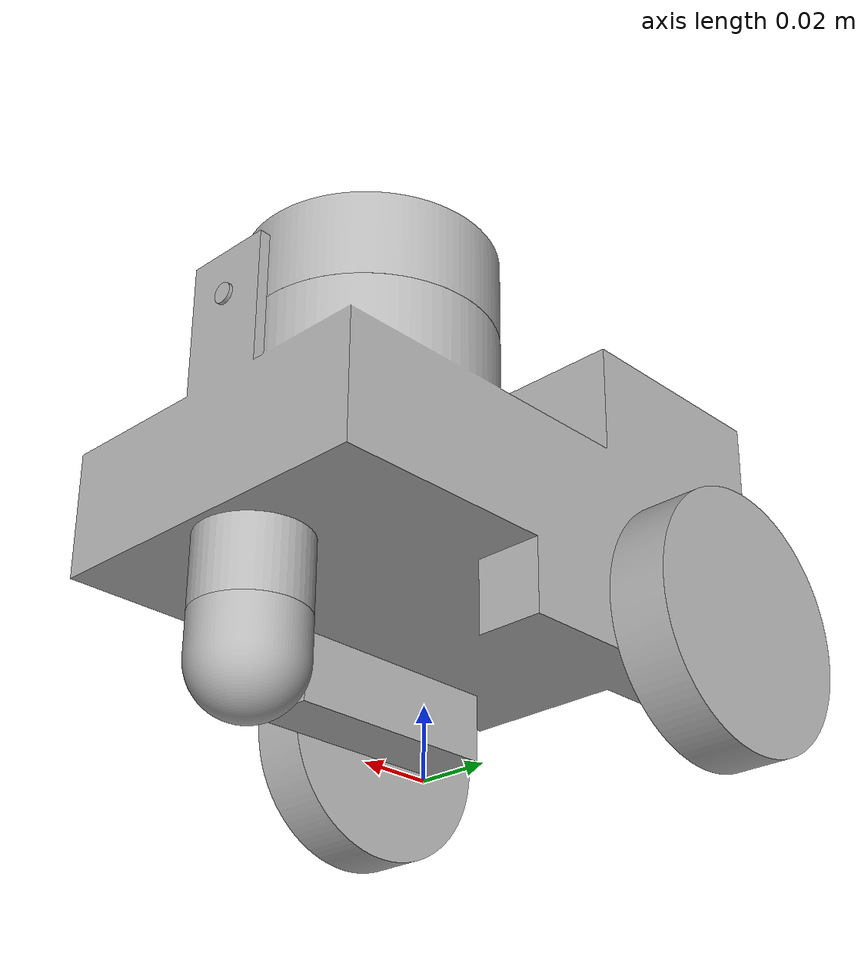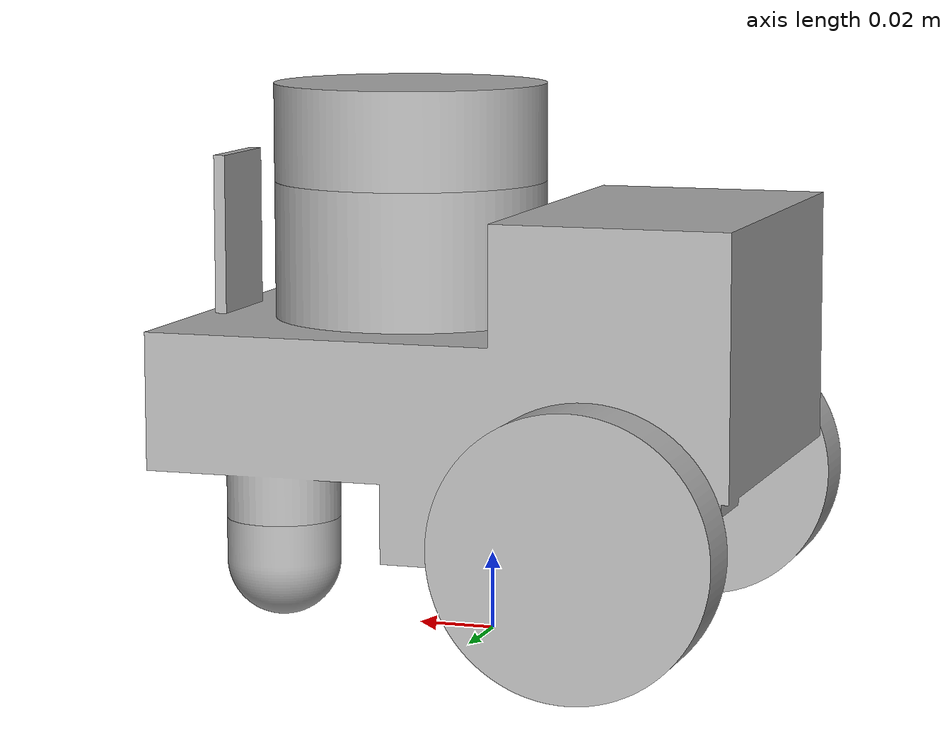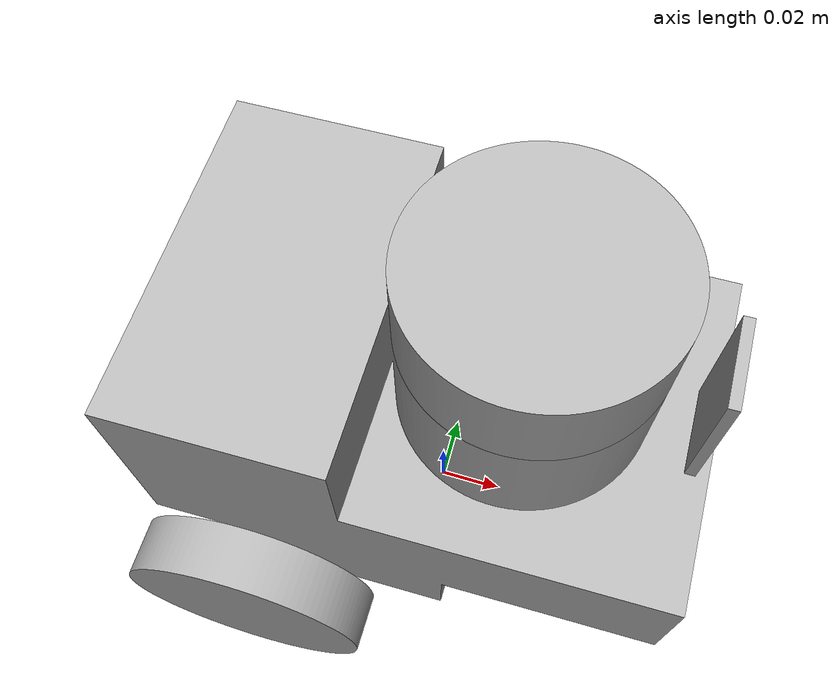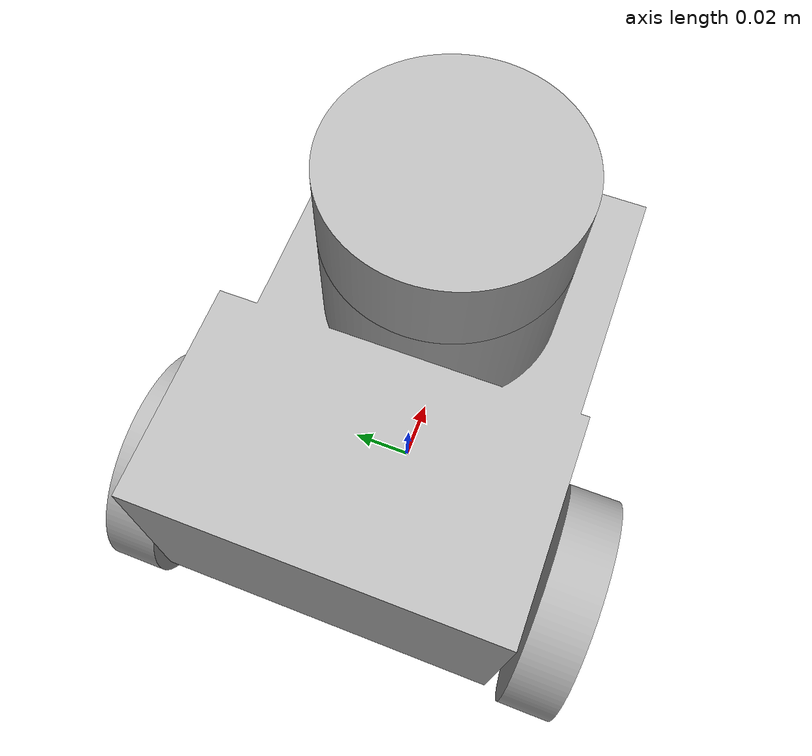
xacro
<?xml version="1.0"?>
<robot xmlns:xacro="http://www.ros.org/wiki/xacro"  name="amiio">

    <xacro:arg name="use_ros2_control" default="true"/>
    <xacro:arg name="sim_mode" default="false"/>

    <xacro:include filename="robot_core.xacro" />

    <xacro:if value="$(arg use_ros2_control)">
        <xacro:include filename="ros2_control.xacro" />
    </xacro:if>
    <xacro:unless value="$(arg use_ros2_control)">
        <xacro:include filename="gazebo_control.xacro" />
    </xacro:unless>
    <xacro:include filename="lidar.xacro" />
    <xacro:include filename="camera.xacro" />
</robot>

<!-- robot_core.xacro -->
<robot xmlns:xacro="http://www.ros.org/wiki/xacro">

<xacro:include filename="$(find myrt_robot)/description/materials.xacro" />

<xacro:property name="wheel_radius" value="0.035"/>
<xacro:property name="wheel_thickness" value="0.02"/>
<xacro:property name="wheel_mass" value="0.2"/>
<xacro:property name="caster_wheel_radius" value="0.026141"/>
<xacro:property name="caster_wheel_mass" value="0.1"/>

<joint name="base_footprint_joint" type="fixed">
  <parent link="base_link"/>
  <child link="base_footprint"/>
  <origin xyz="0 0 0" rpy="0 0 0"/>
</joint>

<link name="base_footprint">
</link>

<link name="base_link">
  <inertial>
    <origin xyz="-0.005628890071166558 -1.932837370238976e-10 0.07346730552183806" rpy="0 0 0"/>
    <mass value="1.5"/>
    <inertia ixx="0.008772" iyy="0.015591" izz="0.01802" ixy="-0.0" iyz="0.0" ixz="0.000755"/>
  </inertial>
  <visual>
    <origin xyz="0 0 0" rpy="0 0 0"/>
    <geometry>
      <mesh filename="file://$(find myrt_robot)/meshes/base_link.stl" scale="0.001 0.001 0.001"/>
    </geometry>
    <material name="silver"/>
  </visual>
  <collision>
    <origin xyz="0 0 0" rpy="0 0 0"/>
    <geometry>
      <mesh filename="file://$(find myrt_robot)/meshes/base_link.stl" scale="0.001 0.001 0.001"/>
    </geometry>
  </collision>
</link>

<gazebo reference="base_link">
  <material>Gazebo/White</material>
</gazebo>

<link name="left_wheel_1">
  <inertial>
    <origin xyz="4.499476740082997e-07 0.014071170243280452 3.6959849514933696e-07" rpy="0 0 0"/>
    <mass value="0.2"/>
    <inertia ixx="0.000159" iyy="0.000296" izz="0.000159" ixy="0.0" iyz="0.0" ixz="-0.0"/>
  </inertial>
  <visual>
    <origin xyz="0.041219 -0.049729 -0.035" rpy="0 0 0"/>
    <geometry>
      <mesh filename="file://$(find myrt_robot)/meshes/left_wheel_1.stl" scale="0.001 0.001 0.001"/>
    </geometry>
    <material name="silver"/>
  </visual>
  <collision>
    <geometry>
        <sphere radius="${wheel_radius}"/>
    </geometry>
  </collision>
</link>

<gazebo reference="left_wheel_1">
  <material>Gazebo/Black</material>
  </gazebo>

<link name="right_wheel_1">
  <inertial>
    <origin xyz="4.499476711980477e-07 -0.014071170243280452 3.6959849514933696e-07" rpy="0 0 0"/>
    <mass value="0.2"/>
    <inertia ixx="0.000159" iyy="0.000296" izz="0.000159" ixy="0.0" iyz="0.0" ixz="-0.0"/>
  </inertial>
  <visual>
    <origin xyz="0.041219 0.049729 -0.035" rpy="0 0 0"/>
    <geometry>
      <mesh filename="file://$(find myrt_robot)/meshes/right_wheel_1.stl" scale="0.001 0.001 0.001"/>
    </geometry>
    <material name="silver"/>
  </visual>
  <collision>
    <geometry>
        <sphere radius="${wheel_radius}"/>
    </geometry>
  </collision>
</link>

<link name="castor_1">
  <inertial>
    <origin xyz="9.095440359901952e-08 0.0 -0.01086613407596613" rpy="0 0 0"/>
    <mass value="0.1173079846739032"/>
    <inertia ixx="1.1e-05" iyy="1.1e-05" izz="1.2e-05" ixy="0.0" iyz="-0.0" ixz="-0.0"/>
  </inertial>
  <visual>
    <origin xyz="-0.057955 -0.0 -0.026141" rpy="0 0 0"/>
    <geometry>
      <mesh filename="file://$(find myrt_robot)/meshes/castor_1.stl" scale="0.001 0.001 0.001"/>
    </geometry>
    <material name="silver"/>
  </visual>
  <collision>
    <origin xyz="-0.057955 -0.0 -0.026141" rpy="0 0 0"/>
    <geometry>
      <mesh filename="file://$(find myrt_robot)/meshes/castor_1.stl" scale="0.001 0.001 0.001"/>
    </geometry>
  </collision>
</link>

<gazebo reference="castor_1">
  <material>Gazebo/Black</material>
  <mu1 value="0.001"/>
  <mu2 value="0.001"/>
  </gazebo>

<joint name="left_wheel_joint" type="continuous">
  <origin xyz="-0.041219 0.049729 0.035" rpy="0 0 0"/>
  <parent link="base_link"/>
  <child link="left_wheel_1"/>
  <axis xyz="0.0 1.0 0.0"/>
</joint>

<joint name="right_wheel_joint" type="continuous">
  <origin xyz="-0.041219 -0.049729 0.035" rpy="0 0 0"/>
  <parent link="base_link"/>
  <child link="right_wheel_1"/>
  <axis xyz="0.0 1.0 0.0"/>
</joint>

<joint name="castor_joint" type="fixed">
  <origin xyz="0.057955 0.0 0.026141" rpy="0 0 0"/>
  <parent link="base_link"/>
  <child link="castor_1"/>
</joint>

</robot>

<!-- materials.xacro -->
<robot xmlns:xacro="http://www.ros.org/wiki/xacro" >

  <material name="silver">
    <color rgba="0.700 0.700 0.700 1.000"/>
  </material>

  <material name="black">
    <color rgba="0 0 0 1"/>
  </material>

  <material name="red">
    <color rgba="1 0 0 1"/>
  </material>

  <material name="white">
    <color rgba="1 1 1 1" />
  </material>

</robot>

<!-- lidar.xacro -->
<robot xmlns:xacro="http://www.ros.org/wiki/xacro" >

    <joint name="laser_joint" type="fixed">
        <origin xyz="0.022 0.0 0.116141" rpy="0 0 0"/>
        <parent link="base_link"/>
        <child link="laser_link_1"/>
    </joint>

    <link name="laser_link_1">
        <inertial>
          <origin xyz="0.0 0.0 0.012500000000000039" rpy="0 0 0"/>
          <mass value="0.1"/>
          <inertia ixx="0.000271" iyy="0.000271" izz="0.000463" ixy="0.0" iyz="-0.0" ixz="0.0"/>
        </inertial>
        <visual>
          <origin xyz="-0.022 -0.0 -0.116141" rpy="0 0 0"/>
          <geometry>
            <mesh filename="file://$(find myrt_robot)/meshes/lidar_1.stl" scale="0.001 0.001 0.001"/>
          </geometry>
          <material name="silver"/>
        </visual>
        <collision>
          <origin xyz="-0.022 -0.0 -0.116141" rpy="0 0 0"/>
          <geometry>
            <mesh filename="file://$(find myrt_robot)/meshes/lidar_1.stl" scale="0.001 0.001 0.001"/>
          </geometry>
        </collision>
      </link>

    <gazebo reference="laser_link_1">
        <material>Gazebo/Red</material>

        <sensor name="laser" type="ray">
            <pose> 0 0 0 0 0 0 </pose>
            <visualize>true</visualize>
            <update_rate>10</update_rate>
            <ray>
                <scan>
                    <horizontal>
                        <samples>360</samples>
                        <min_angle>-3.14</min_angle>
                        <max_angle>3.14</max_angle>
                    </horizontal>
                </scan>
                <range>
                    <min>0.1</min>
                    <max>12</max>
                </range>
            </ray>
            <plugin name="laser_controller" filename="libgazebo_ros_ray_sensor.so">
                <ros>
                    <argument>~/out:=scan</argument>
                </ros>
                <output_type>sensor_msgs/LaserScan</output_type>
                <frame_name>laser_link_1</frame_name>
            </plugin>
        </sensor>
    </gazebo>

</robot>

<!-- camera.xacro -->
<robot xmlns:xacro="http://www.ros.org/wiki/xacro" >

    <joint name="camera_joint" type="fixed">
        <origin xyz="0.071 0.0 0.109" rpy="0 0 0"/>
        <parent link="base_link"/>
        <child link="camera_link"/>
    </joint>

    <link name="camera_link">
    <inertial>
        <origin xyz="0.0007500010430812887 2.957630472806727e-13 1.6242265726829075e-09" rpy="0 0 0"/>
        <mass value="0.00029593803678781074"/>
        <inertia ixx="0.0" iyy="0.0" izz="0.0" ixy="-0.0" iyz="-0.0" ixz="-0.0"/>
    </inertial>
    <visual>
        <origin xyz="-0.071 -0.0 -0.109" rpy="0 0 0"/>
        <geometry>
        <mesh filename="file://$(find myrt_robot)/meshes/camera_1.stl" scale="0.001 0.001 0.001"/>
        </geometry>
        <material name="silver"/>
    </visual>
    <collision>
        <origin xyz="-0.071 -0.0 -0.109" rpy="0 0 0"/>
        <geometry>
        <mesh filename="file://$(find myrt_robot)/meshes/camera_1.stl" scale="0.001 0.001 0.001"/>
        </geometry>
    </collision>
    </link>

    <joint name="camera_optical_joint" type="fixed">
        <parent link="camera_link"/>
        <child link="camera_link_optical"/>
        <origin xyz="0 0 0" rpy="${-pi/2} 0 ${-pi/2}"/>
    </joint>

    <link name="camera_link_optical"></link>

    <gazebo reference="camera_link">
        <material>Gazebo/Black</material>

        <sensor name="camera" type="camera">
            <pose> 0 0 0 0 0 0 </pose>
            <visualize>true</visualize>
            <update_rate>10</update_rate>
            <camera>
                <horizontal_fov>1.089</horizontal_fov>
                <image>
                    <format>R8G8B8</format>
                    <width>640</width>
                    <height>480</height>
                </image>
                <clip>
                    <near>0.05</near>
                    <far>8.0</far>
                </clip>
            </camera>
            <plugin name="camera_controller" filename="libgazebo_ros_camera.so">
                <frame_name>camera_link_optical</frame_name>
            </plugin>
        </sensor>
    </gazebo>

</robot>
